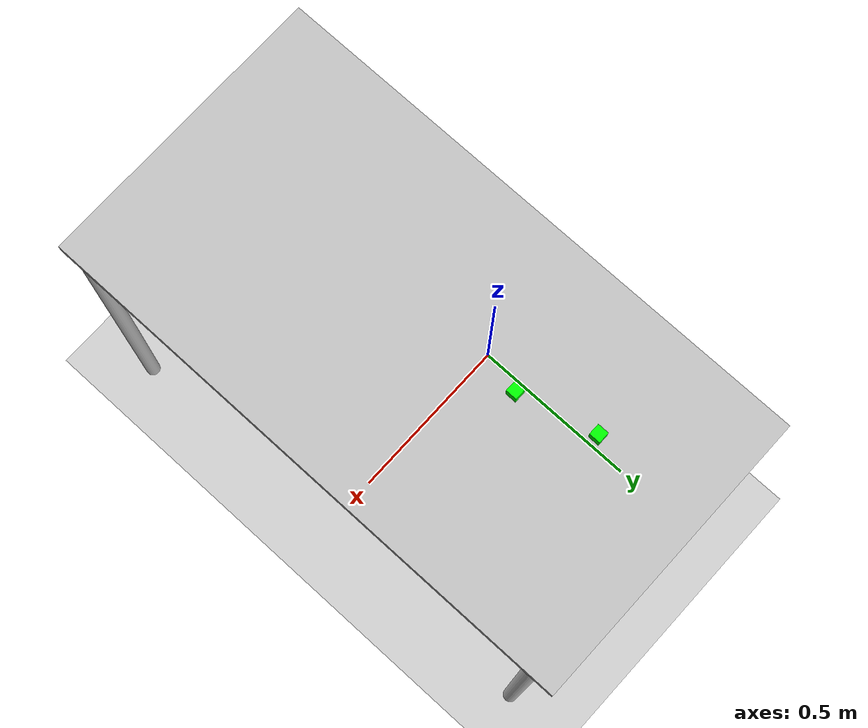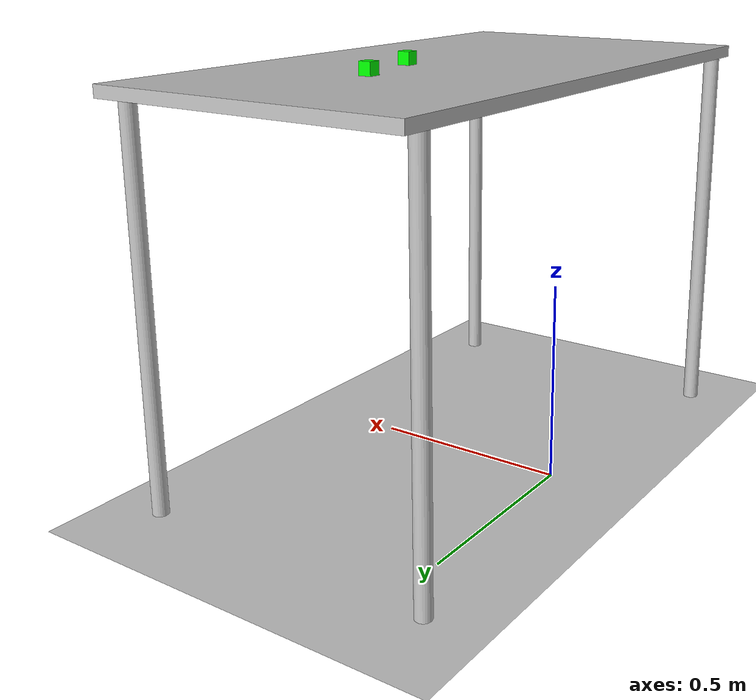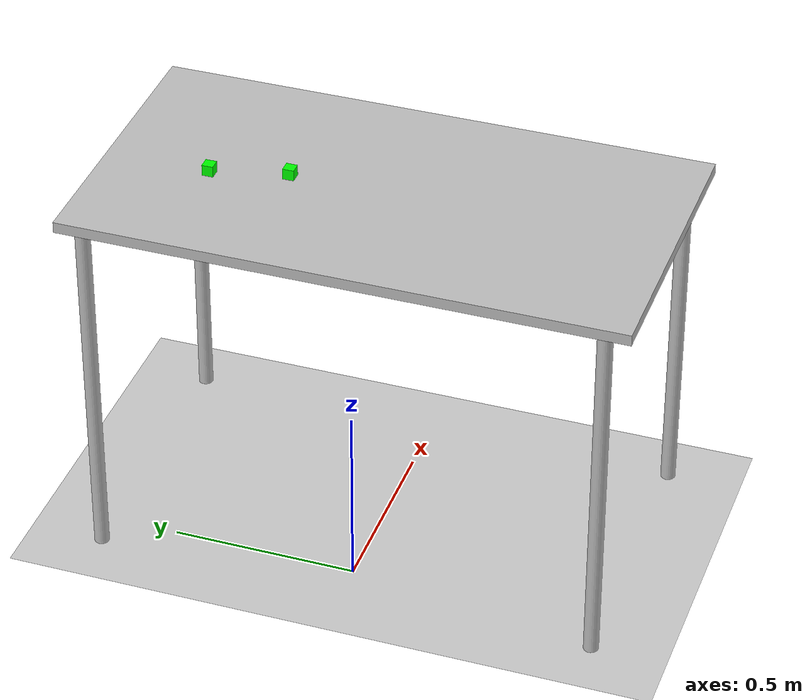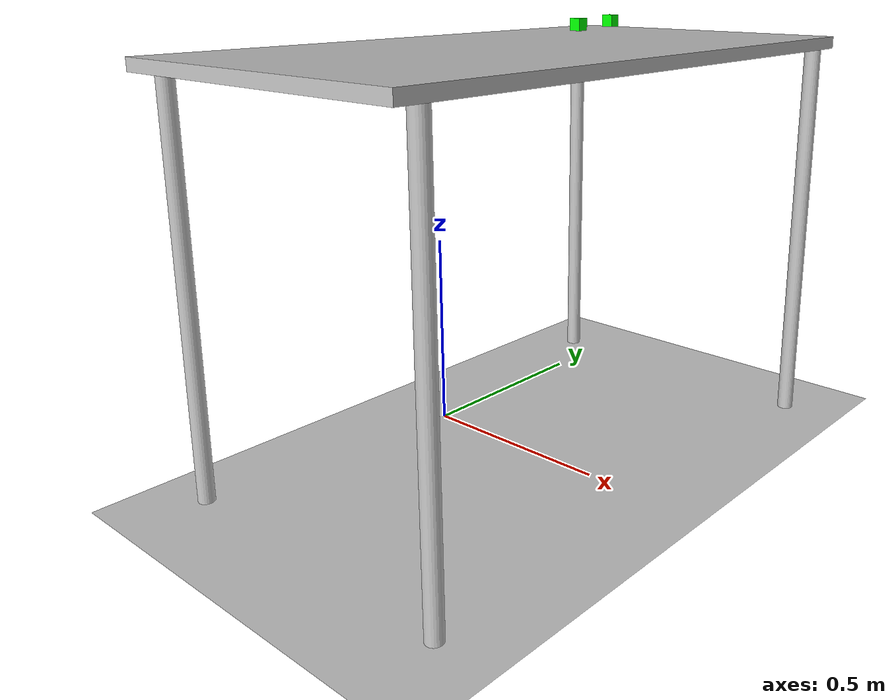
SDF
<sdf version="1.6">
 <world name="arm_on_the_table">
  <scene>
   <shadows>true</shadows>
   <ambient>0.8 0.8 0.8 0.8</ambient>
   <background>0.8 0.8 0.8 0.8</background>
  </scene>
  <include><uri>model://sun</uri></include>
  <model name="table">
   <static>true</static>
   <include><uri>model://table</uri></include>
   <pose>0.29 0 0 0 0 1.5708</pose>
  </model>
  <model name="ground_plane"><static>true</static><include><uri>model://ground_plane</uri></include></model>
  <include><uri>model://cube</uri><name>cube_model</name><pose>0.2 0.45 1.05 0 0 0</pose></include>
  <include><uri>model://box</uri><name>box_model</name><pose>0.25 0.25 1.05 0 0 0</pose></include>
 </world>
</sdf>

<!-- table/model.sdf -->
<sdf version="1.5">
  <model name="table">
    <static>true</static>
    <link name="link">
      <collision name="surface">
        <pose>0 0 1.0 0 0 0</pose>
        <geometry>
          <box>
            <size>1.5 0.8 0.03</size>
          </box>
        </geometry>
        <surface>
          <friction>
            <ode>
              <mu>0.6</mu>
              <mu2>0.6</mu2>
            </ode>
          </friction>
        </surface>
      </collision>
      <visual name="visual1">
        <pose>0 0 1.0 0 0 0</pose>
        <geometry>
          <box>
            <size>1.5 0.8 0.03</size>
          </box>
        </geometry>
        <material>
          <!-- 手写 Gazebo/Grey：精确匹配 -->
          <ambient>0.75 0.75 0.75 1</ambient>
          <diffuse>0.75 0.75 0.75 1</diffuse>
          <specular>0.18 0.18 0.18 1</specular>
          <shininess>24</shininess>
          <emissive>0 0 0 1</emissive>
        </material>
      </visual>

      <collision name="front_left_leg">
        <pose>0.68 0.38 0.5 0 0 0</pose>
        <geometry>
          <cylinder>
            <radius>0.02</radius>
            <length>1.0</length>
          </cylinder>
        </geometry>
      </collision>
      <visual name="front_left_leg">
        <pose>0.68 0.38 0.5 0 0 0</pose>
        <geometry>
          <cylinder>
            <radius>0.02</radius>
            <length>1.0</length>
          </cylinder>
        </geometry>
        <material>
          <!-- 手写 Gazebo/Grey：精确匹配 -->
          <ambient>0.75 0.75 0.75 1</ambient>
          <diffuse>0.75 0.75 0.75 1</diffuse>
          <specular>0.18 0.18 0.18 1</specular>
          <shininess>24</shininess>
          <emissive>0 0 0 1</emissive>
        </material>
      </visual>

      <collision name="front_right_leg">
        <pose>0.68 -0.38 0.5 0 0 0</pose>
        <geometry>
          <cylinder>
            <radius>0.02</radius>
            <length>1.0</length>
          </cylinder>
        </geometry>
      </collision>
       <visual name="front_right_leg">
        <pose>0.68 -0.38 0.5 0 0 0</pose>
        <geometry>
          <cylinder>
            <radius>0.02</radius>
            <length>1.0</length>
          </cylinder>
        </geometry>
        <material>
          <!-- 手写 Gazebo/Grey -->
          <ambient>0.75 0.75 0.75 1</ambient>
          <diffuse>0.75 0.75 0.75 1</diffuse>
          <specular>0.18 0.18 0.18 1</specular>
          <shininess>24</shininess>
          <emissive>0 0 0 1</emissive>
        </material>
      </visual>

      <collision name="back_right_leg">
        <pose>-0.68 -0.38 0.5 0 0 0</pose>
        <geometry>
          <cylinder>
            <radius>0.02</radius>
            <length>1.0</length>
          </cylinder>
        </geometry>
      </collision>
      <visual name="back_right_leg">
        <pose>-0.68 -0.38 0.5 0 0 0</pose>
        <geometry>
          <cylinder>
            <radius>0.02</radius>
            <length>1.0</length>
          </cylinder>
        </geometry>
        <material>
          <!-- 手写 Gazebo/Grey -->
          <ambient>0.75 0.75 0.75 1</ambient>
          <diffuse>0.75 0.75 0.75 1</diffuse>
          <specular>0.18 0.18 0.18 1</specular>
          <shininess>24</shininess>
          <emissive>0 0 0 1</emissive>
        </material>
      </visual>

      <collision name="back_left_leg">
        <pose>-0.68 0.38 0.5 0 0 0</pose>
        <geometry>
          <cylinder>
            <radius>0.02</radius>
            <length>1.0</length>
          </cylinder>
        </geometry>
      </collision>
       <visual name="back_left_leg">
        <pose>-0.68 0.38 0.5 0 0 0</pose>
        <geometry>
          <cylinder>
            <radius>0.02</radius>
            <length>1.0</length>
          </cylinder>
        </geometry>
        <material>
          <!-- 手写 Gazebo/Grey -->
          <ambient>0.75 0.75 0.75 1</ambient>
          <diffuse>0.75 0.75 0.75 1</diffuse>
          <specular>0.18 0.18 0.18 1</specular>
          <shininess>24</shininess>
          <emissive>0 0 0 1</emissive>
        </material>
      </visual>

    </link>
  </model>
</sdf>

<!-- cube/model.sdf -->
<sdf version="1.7">
  <model name="cube">
    <static>false</static>
    <self_collide>false</self_collide>
    <allow_auto_disable>false</allow_auto_disable>

    <link name="box_link">
      <gravity>true</gravity>
      <enable_wind>false</enable_wind>

      <inertial>
        <mass>0.08</mass>
        <inertia>
          <ixx>1.2e-5</ixx>
          <iyy>1.2e-5</iyy>
          <izz>1.2e-5</izz>
          <ixy>0.0</ixy>
          <ixz>0.0</ixz>
          <iyz>0.0</iyz>
        </inertia>
      </inertial>

      <velocity_decay>
        <linear>0.08</linear>
        <angular>0.12</angular>
      </velocity_decay>

      <collision name="box_collision">
        <geometry>
          <box>
            <size>0.03 0.03 0.03</size>
          </box>
        </geometry>
        <surface>
          <friction>
            <ode>
              <mu>0.08</mu>
              <mu2>0.08</mu2>
            </ode>
          </friction>
          <contact>
            <ode/>
          </contact>
        </surface>
      </collision>

      <visual name="box_visual">
        <geometry>
          <box>
            <size>0.03 0.03 0.03</size>
          </box>
        </geometry>
        <material>
          <ambient>0 1 0 1</ambient>
          <diffuse>0 1 0 1</diffuse>
          <specular>0.1 0.1 0.1 1</specular>
        </material>
      </visual>
    </link>

    <plugin
      filename="ignition-gazebo-velocity-control-system"
      name="ignition::gazebo::systems::VelocityControl">
      <topic>/model/cube_model/cmd_vel</topic>
      <initial_linear>0.0 0.0 0.0</initial_linear>
      <initial_angular>0.0 0.0 0.0</initial_angular>
    </plugin>
  </model>
</sdf>

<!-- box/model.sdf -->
<sdf version="1.7">
  <model name="box">
    <static>false</static>
    <link name="box">
      <inertial>
        <mass>0.0612</mass>
        <inertia>
          <ixx>9.634e-06</ixx>
          <iyy>1.275e-05</iyy>
          <izz>6.064e-06</izz>
        </inertia>
      </inertial>
      <collision name="collision">
        <geometry>
          <box><size>0.03 0.03 0.03</size></box>
        </geometry>
      </collision>
      <visual name="visual">
        <geometry>
          <box><size>0.03 0.03 0.03</size></box>
        </geometry>
        <material>
          <ambient>0 1 0 1</ambient>
          <diffuse>0 1 0 1</diffuse>
        </material>
      </visual>
    </link>
  </model>
</sdf>
